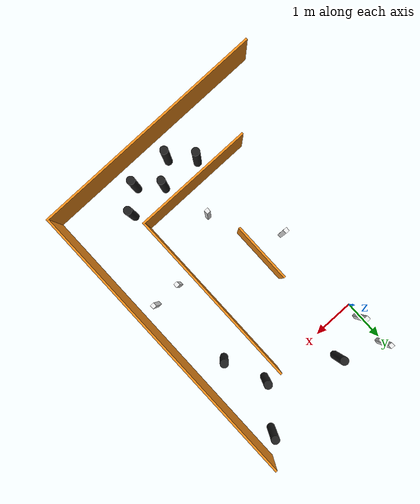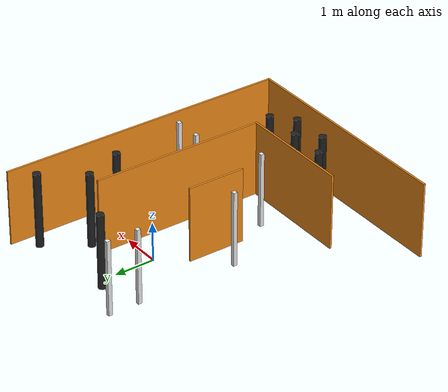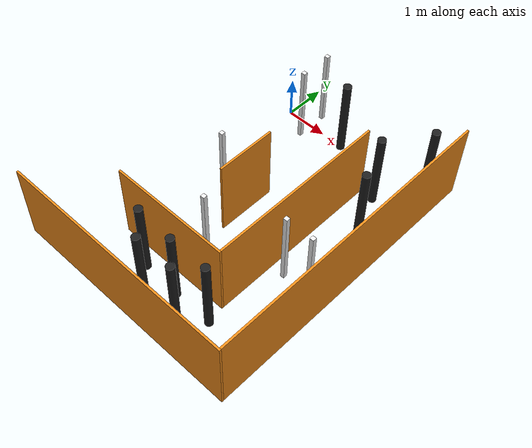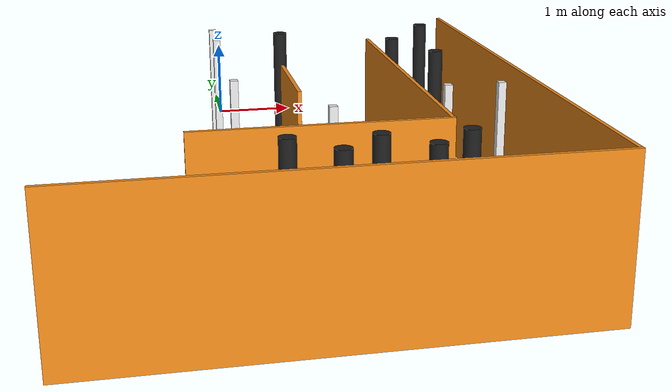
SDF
<sdf version="1.7">
 <model name="pesu_hackathon_arena_1">
  <link name="link_3">
   <pose>2.225 -2.225 0 0 -0 0</pose>
   <visual name="visual">
    <geometry><box><size>0.05 4.5 2</size></box></geometry>
    <material>
     <lighting>1</lighting>
     <script><uri>file://media/materials/scripts/gazebo.material</uri><name>Gazebo/Orange</name></script>
     <shader type="pixel"/>
    </material>
   </visual>
   <collision name="collision">
    <geometry><box><size>0.05 4.5 2</size></box></geometry>
    <surface>
     <friction>
      <ode><mu>1</mu><mu2>1</mu2><fdir1>0 0 0</fdir1><slip1>0</slip1><slip2>0</slip2></ode>
      <torsional>
       <coefficient>1</coefficient>
       <patch_radius>0</patch_radius>
       <surface_radius>0</surface_radius>
       <use_patch_radius>1</use_patch_radius>
       <ode><slip>0</slip></ode>
      </torsional>
     </friction>
     <bounce><restitution_coefficient>0</restitution_coefficient><threshold>1e+06</threshold></bounce>
     <contact>
      <collide_without_contact>0</collide_without_contact>
      <collide_without_contact_bitmask>1</collide_without_contact_bitmask>
      <collide_bitmask>1</collide_bitmask>
      <ode>
       <soft_cfm>0</soft_cfm>
       <soft_erp>0.2</soft_erp>
       <kp>1e+13</kp>
       <kd>1</kd>
       <max_vel>0.01</max_vel>
       <min_depth>0</min_depth>
      </ode>
      <bullet>
       <split_impulse>1</split_impulse>
       <split_impulse_penetration_threshold>-0.01</split_impulse_penetration_threshold>
       <soft_cfm>0</soft_cfm>
       <soft_erp>0.2</soft_erp>
       <kp>1e+13</kp>
       <kd>1</kd>
      </bullet>
     </contact>
    </surface>
   </collision>
  </link>
  <link name="link_5">
   <pose>3.75 -2.225 0 0 -0 0</pose>
   <visual name="visual">
    <geometry><box><size>0.05 7.5 2</size></box></geometry>
    <material>
     <lighting>1</lighting>
     <script><uri>file://media/materials/scripts/gazebo.material</uri><name>Gazebo/Orange</name></script>
     <shader type="pixel"/>
    </material>
   </visual>
   <collision name="collision">
    <geometry><box><size>0.05 7.5 2</size></box></geometry>
    <surface>
     <friction>
      <ode><mu>1</mu><mu2>1</mu2><fdir1>0 0 0</fdir1><slip1>0</slip1><slip2>0</slip2></ode>
      <torsional>
       <coefficient>1</coefficient>
       <patch_radius>0</patch_radius>
       <surface_radius>0</surface_radius>
       <use_patch_radius>1</use_patch_radius>
       <ode><slip>0</slip></ode>
      </torsional>
     </friction>
     <bounce><restitution_coefficient>0</restitution_coefficient><threshold>1e+06</threshold></bounce>
     <contact>
      <collide_without_contact>0</collide_without_contact>
      <collide_without_contact_bitmask>1</collide_without_contact_bitmask>
      <collide_bitmask>1</collide_bitmask>
      <ode>
       <soft_cfm>0</soft_cfm>
       <soft_erp>0.2</soft_erp>
       <kp>1e+13</kp>
       <kd>1</kd>
       <max_vel>0.01</max_vel>
       <min_depth>0</min_depth>
      </ode>
      <bullet>
       <split_impulse>1</split_impulse>
       <split_impulse_penetration_threshold>-0.01</split_impulse_penetration_threshold>
       <soft_cfm>0</soft_cfm>
       <soft_erp>0.2</soft_erp>
       <kp>1e+13</kp>
       <kd>1</kd>
      </bullet>
     </contact>
    </surface>
   </collision>
  </link>
  <link name="link_6">
   <pose>0.765 -6 0 0 -0 0</pose>
   <visual name="visual">
    <geometry><box><size>6.025 0.05 2</size></box></geometry>
    <material>
     <lighting>1</lighting>
     <script><uri>file://media/materials/scripts/gazebo.material</uri><name>Gazebo/Orange</name></script>
     <shader type="pixel"/>
    </material>
   </visual>
   <collision name="collision">
    <geometry><box><size>6.025 0.05 2</size></box></geometry>
    <surface>
     <friction>
      <ode><mu>1</mu><mu2>1</mu2><fdir1>0 0 0</fdir1><slip1>0</slip1><slip2>0</slip2></ode>
      <torsional>
       <coefficient>1</coefficient>
       <patch_radius>0</patch_radius>
       <surface_radius>0</surface_radius>
       <use_patch_radius>1</use_patch_radius>
       <ode><slip>0</slip></ode>
      </torsional>
     </friction>
     <bounce><restitution_coefficient>0</restitution_coefficient><threshold>1e+06</threshold></bounce>
     <contact>
      <collide_without_contact>0</collide_without_contact>
      <collide_without_contact_bitmask>1</collide_without_contact_bitmask>
      <collide_bitmask>1</collide_bitmask>
      <ode>
       <soft_cfm>0</soft_cfm>
       <soft_erp>0.2</soft_erp>
       <kp>1e+13</kp>
       <kd>1</kd>
       <max_vel>0.01</max_vel>
       <min_depth>0</min_depth>
      </ode>
      <bullet>
       <split_impulse>1</split_impulse>
       <split_impulse_penetration_threshold>-0.01</split_impulse_penetration_threshold>
       <soft_cfm>0</soft_cfm>
       <soft_erp>0.2</soft_erp>
       <kp>1e+13</kp>
       <kd>1</kd>
      </bullet>
     </contact>
    </surface>
   </collision>
  </link>
  <link name="link_8">
   <pose>0.75 -4.5 0 0 -0 0</pose>
   <visual name="visual">
    <geometry><box><size>3 0.05 2</size></box></geometry>
    <material>
     <lighting>1</lighting>
     <script><uri>file://media/materials/scripts/gazebo.material</uri><name>Gazebo/Orange</name></script>
     <shader type="pixel"/>
    </material>
   </visual>
   <collision name="collision">
    <geometry><box><size>3 0.05 2</size></box></geometry>
    <surface>
     <friction>
      <ode><mu>1</mu><mu2>1</mu2><fdir1>0 0 0</fdir1><slip1>0</slip1><slip2>0</slip2></ode>
      <torsional>
       <coefficient>1</coefficient>
       <patch_radius>0</patch_radius>
       <surface_radius>0</surface_radius>
       <use_patch_radius>1</use_patch_radius>
       <ode><slip>0</slip></ode>
      </torsional>
     </friction>
     <bounce><restitution_coefficient>0</restitution_coefficient><threshold>1e+06</threshold></bounce>
     <contact>
      <collide_without_contact>0</collide_without_contact>
      <collide_without_contact_bitmask>1</collide_without_contact_bitmask>
      <collide_bitmask>1</collide_bitmask>
      <ode>
       <soft_cfm>0</soft_cfm>
       <soft_erp>0.2</soft_erp>
       <kp>1e+13</kp>
       <kd>1</kd>
       <max_vel>0.01</max_vel>
       <min_depth>0</min_depth>
      </ode>
      <bullet>
       <split_impulse>1</split_impulse>
       <split_impulse_penetration_threshold>-0.01</split_impulse_penetration_threshold>
       <soft_cfm>0</soft_cfm>
       <soft_erp>0.2</soft_erp>
       <kp>1e+13</kp>
       <kd>1</kd>
      </bullet>
     </contact>
    </surface>
   </collision>
  </link>
  <link name="link_9">
   <pose>0.725 -2.25 0 0 -0 0</pose>
   <visual name="visual">
    <geometry><box><size>0.05 1.5 2</size></box></geometry>
    <material>
     <lighting>1</lighting>
     <script><uri>file://media/materials/scripts/gazebo.material</uri><name>Gazebo/Orange</name></script>
     <shader type="pixel"/>
    </material>
   </visual>
   <collision name="collision">
    <geometry><box><size>0.05 1.5 2</size></box></geometry>
    <surface>
     <friction>
      <ode><mu>1</mu><mu2>1</mu2><fdir1>0 0 0</fdir1><slip1>0</slip1><slip2>0</slip2></ode>
      <torsional>
       <coefficient>1</coefficient>
       <patch_radius>0</patch_radius>
       <surface_radius>0</surface_radius>
       <use_patch_radius>1</use_patch_radius>
       <ode><slip>0</slip></ode>
      </torsional>
     </friction>
     <bounce><restitution_coefficient>0</restitution_coefficient><threshold>1e+06</threshold></bounce>
     <contact>
      <collide_without_contact>0</collide_without_contact>
      <collide_without_contact_bitmask>1</collide_without_contact_bitmask>
      <collide_bitmask>1</collide_bitmask>
      <ode>
       <soft_cfm>0</soft_cfm>
       <soft_erp>0.2</soft_erp>
       <kp>1e+13</kp>
       <kd>1</kd>
       <max_vel>0.01</max_vel>
       <min_depth>0</min_depth>
      </ode>
      <bullet>
       <split_impulse>1</split_impulse>
       <split_impulse_penetration_threshold>-0.01</split_impulse_penetration_threshold>
       <soft_cfm>0</soft_cfm>
       <soft_erp>0.2</soft_erp>
       <kp>1e+13</kp>
       <kd>1</kd>
      </bullet>
     </contact>
    </surface>
   </collision>
  </link>
  <link name="obstacle_0">
   <pose>1 -3.75 0 0 -0 0</pose>
   <visual name="visual">
    <geometry><box><size>0.1 0.1 2</size></box></geometry>
    <material>
     <lighting>1</lighting>
     <script><uri>file://media/materials/scripts/gazebo.material</uri><name>Gazebo/White</name></script>
     <shader type="pixel"/>
    </material>
   </visual>
   <collision name="collision">
    <geometry><box><size>0.1 0.1 2</size></box></geometry>
    <surface>
     <friction>
      <ode><mu>1</mu><mu2>1</mu2><fdir1>0 0 0</fdir1><slip1>0</slip1><slip2>0</slip2></ode>
      <torsional>
       <coefficient>1</coefficient>
       <patch_radius>0</patch_radius>
       <surface_radius>0</surface_radius>
       <use_patch_radius>1</use_patch_radius>
       <ode><slip>0</slip></ode>
      </torsional>
     </friction>
     <bounce><restitution_coefficient>0</restitution_coefficient><threshold>1e+06</threshold></bounce>
     <contact>
      <collide_without_contact>0</collide_without_contact>
      <collide_without_contact_bitmask>1</collide_without_contact_bitmask>
      <collide_bitmask>1</collide_bitmask>
      <ode>
       <soft_cfm>0</soft_cfm>
       <soft_erp>0.2</soft_erp>
       <kp>1e+13</kp>
       <kd>1</kd>
       <max_vel>0.01</max_vel>
       <min_depth>0</min_depth>
      </ode>
      <bullet>
       <split_impulse>1</split_impulse>
       <split_impulse_penetration_threshold>-0.01</split_impulse_penetration_threshold>
       <soft_cfm>0</soft_cfm>
       <soft_erp>0.2</soft_erp>
       <kp>1e+13</kp>
       <kd>1</kd>
      </bullet>
     </contact>
    </surface>
   </collision>
  </link>
  <link name="obstacle_1">
   <pose>0 -2.25 0 0 -0 0</pose>
   <visual name="visual">
    <geometry><box><size>0.1 0.1 2</size></box></geometry>
    <material>
     <lighting>1</lighting>
     <script><uri>file://media/materials/scripts/gazebo.material</uri><name>Gazebo/White</name></script>
     <shader type="pixel"/>
    </material>
   </visual>
   <collision name="collision">
    <geometry><box><size>0.1 0.1 2</size></box></geometry>
    <surface>
     <friction>
      <ode><mu>1</mu><mu2>1</mu2><fdir1>0 0 0</fdir1><slip1>0</slip1><slip2>0</slip2></ode>
      <torsional>
       <coefficient>1</coefficient>
       <patch_radius>0</patch_radius>
       <surface_radius>0</surface_radius>
       <use_patch_radius>1</use_patch_radius>
       <ode><slip>0</slip></ode>
      </torsional>
     </friction>
     <bounce><restitution_coefficient>0</restitution_coefficient><threshold>1e+06</threshold></bounce>
     <contact>
      <collide_without_contact>0</collide_without_contact>
      <collide_without_contact_bitmask>1</collide_without_contact_bitmask>
      <collide_bitmask>1</collide_bitmask>
      <ode>
       <soft_cfm>0</soft_cfm>
       <soft_erp>0.2</soft_erp>
       <kp>1e+13</kp>
       <kd>1</kd>
       <max_vel>0.01</max_vel>
       <min_depth>0</min_depth>
      </ode>
      <bullet>
       <split_impulse>1</split_impulse>
       <split_impulse_penetration_threshold>-0.01</split_impulse_penetration_threshold>
       <soft_cfm>0</soft_cfm>
       <soft_erp>0.2</soft_erp>
       <kp>1e+13</kp>
       <kd>1</kd>
      </bullet>
     </contact>
    </surface>
   </collision>
  </link>
  <link name="obstacle_7">
   <pose>0.3 -4.9 0 0 -0 0</pose>
   <visual name="visual">
    <geometry><cylinder><radius>0.1</radius><length>2</length></cylinder></geometry>
    <material>
     <lighting>1</lighting>
     <script><uri>file://media/materials/scripts/gazebo.material</uri><name>Gazebo/Black</name></script>
     <shader type="pixel"/>
    </material>
   </visual>
   <collision name="collision">
    <geometry><cylinder><radius>0.1</radius><length>2</length></cylinder></geometry>
    <surface>
     <friction>
      <ode><mu>1</mu><mu2>1</mu2><fdir1>0 0 0</fdir1><slip1>0</slip1><slip2>0</slip2></ode>
      <torsional>
       <coefficient>1</coefficient>
       <patch_radius>0</patch_radius>
       <surface_radius>0</surface_radius>
       <use_patch_radius>1</use_patch_radius>
       <ode><slip>0</slip></ode>
      </torsional>
     </friction>
     <bounce><restitution_coefficient>0</restitution_coefficient><threshold>1e+06</threshold></bounce>
     <contact>
      <collide_without_contact>0</collide_without_contact>
      <collide_without_contact_bitmask>1</collide_without_contact_bitmask>
      <collide_bitmask>1</collide_bitmask>
      <ode>
       <soft_cfm>0</soft_cfm>
       <soft_erp>0.2</soft_erp>
       <kp>1e+13</kp>
       <kd>1</kd>
       <max_vel>0.01</max_vel>
       <min_depth>0</min_depth>
      </ode>
      <bullet>
       <split_impulse>1</split_impulse>
       <split_impulse_penetration_threshold>-0.01</split_impulse_penetration_threshold>
       <soft_cfm>0</soft_cfm>
       <soft_erp>0.2</soft_erp>
       <kp>1e+13</kp>
       <kd>1</kd>
      </bullet>
     </contact>
    </surface>
   </collision>
  </link>
  <link name="obstacle_8">
   <pose>0.8 -5.4 0 0 -0 0</pose>
   <visual name="visual">
    <geometry><cylinder><radius>0.1</radius><length>2</length></cylinder></geometry>
    <material>
     <lighting>1</lighting>
     <script><uri>file://media/materials/scripts/gazebo.material</uri><name>Gazebo/Black</name></script>
     <shader type="pixel"/>
    </material>
   </visual>
   <collision name="collision">
    <geometry><cylinder><radius>0.1</radius><length>2</length></cylinder></geometry>
    <surface>
     <friction>
      <ode><mu>1</mu><mu2>1</mu2><fdir1>0 0 0</fdir1><slip1>0</slip1><slip2>0</slip2></ode>
      <torsional>
       <coefficient>1</coefficient>
       <patch_radius>0</patch_radius>
       <surface_radius>0</surface_radius>
       <use_patch_radius>1</use_patch_radius>
       <ode><slip>0</slip></ode>
      </torsional>
     </friction>
     <bounce><restitution_coefficient>0</restitution_coefficient><threshold>1e+06</threshold></bounce>
     <contact>
      <collide_without_contact>0</collide_without_contact>
      <collide_without_contact_bitmask>1</collide_without_contact_bitmask>
      <collide_bitmask>1</collide_bitmask>
      <ode>
       <soft_cfm>0</soft_cfm>
       <soft_erp>0.2</soft_erp>
       <kp>1e+13</kp>
       <kd>1</kd>
       <max_vel>0.01</max_vel>
       <min_depth>0</min_depth>
      </ode>
      <bullet>
       <split_impulse>1</split_impulse>
       <split_impulse_penetration_threshold>-0.01</split_impulse_penetration_threshold>
       <soft_cfm>0</soft_cfm>
       <soft_erp>0.2</soft_erp>
       <kp>1e+13</kp>
       <kd>1</kd>
      </bullet>
     </contact>
    </surface>
   </collision>
  </link>
  <link name="obstacle_9">
   <pose>1.3 -4.95 0 0 -0 0</pose>
   <visual name="visual">
    <geometry><cylinder><radius>0.1</radius><length>2</length></cylinder></geometry>
    <material>
     <lighting>1</lighting>
     <script><uri>file://media/materials/scripts/gazebo.material</uri><name>Gazebo/Black</name></script>
     <shader type="pixel"/>
    </material>
   </visual>
   <collision name="collision">
    <geometry><cylinder><radius>0.1</radius><length>2</length></cylinder></geometry>
    <surface>
     <friction>
      <ode><mu>1</mu><mu2>1</mu2><fdir1>0 0 0</fdir1><slip1>0</slip1><slip2>0</slip2></ode>
      <torsional>
       <coefficient>1</coefficient>
       <patch_radius>0</patch_radius>
       <surface_radius>0</surface_radius>
       <use_patch_radius>1</use_patch_radius>
       <ode><slip>0</slip></ode>
      </torsional>
     </friction>
     <bounce><restitution_coefficient>0</restitution_coefficient><threshold>1e+06</threshold></bounce>
     <contact>
      <collide_without_contact>0</collide_without_contact>
      <collide_without_contact_bitmask>1</collide_without_contact_bitmask>
      <collide_bitmask>1</collide_bitmask>
      <ode>
       <soft_cfm>0</soft_cfm>
       <soft_erp>0.2</soft_erp>
       <kp>1e+13</kp>
       <kd>1</kd>
       <max_vel>0.01</max_vel>
       <min_depth>0</min_depth>
      </ode>
      <bullet>
       <split_impulse>1</split_impulse>
       <split_impulse_penetration_threshold>-0.01</split_impulse_penetration_threshold>
       <soft_cfm>0</soft_cfm>
       <soft_erp>0.2</soft_erp>
       <kp>1e+13</kp>
       <kd>1</kd>
      </bullet>
     </contact>
    </surface>
   </collision>
  </link>
  <link name="obstacle_10">
   <pose>1.8 -5.4 0 0 -0 0</pose>
   <visual name="visual">
    <geometry><cylinder><radius>0.1</radius><length>2</length></cylinder></geometry>
    <material>
     <lighting>1</lighting>
     <script><uri>file://media/materials/scripts/gazebo.material</uri><name>Gazebo/Black</name></script>
     <shader type="pixel"/>
    </material>
   </visual>
   <collision name="collision">
    <geometry><cylinder><radius>0.1</radius><length>2</length></cylinder></geometry>
    <surface>
     <friction>
      <ode><mu>1</mu><mu2>1</mu2><fdir1>0 0 0</fdir1><slip1>0</slip1><slip2>0</slip2></ode>
      <torsional>
       <coefficient>1</coefficient>
       <patch_radius>0</patch_radius>
       <surface_radius>0</surface_radius>
       <use_patch_radius>1</use_patch_radius>
       <ode><slip>0</slip></ode>
      </torsional>
     </friction>
     <bounce><restitution_coefficient>0</restitution_coefficient><threshold>1e+06</threshold></bounce>
     <contact>
      <collide_without_contact>0</collide_without_contact>
      <collide_without_contact_bitmask>1</collide_without_contact_bitmask>
      <collide_bitmask>1</collide_bitmask>
      <ode>
       <soft_cfm>0</soft_cfm>
       <soft_erp>0.2</soft_erp>
       <kp>1e+13</kp>
       <kd>1</kd>
       <max_vel>0.01</max_vel>
       <min_depth>0</min_depth>
      </ode>
      <bullet>
       <split_impulse>1</split_impulse>
       <split_impulse_penetration_threshold>-0.01</split_impulse_penetration_threshold>
       <soft_cfm>0</soft_cfm>
       <soft_erp>0.2</soft_erp>
       <kp>1e+13</kp>
       <kd>1</kd>
      </bullet>
     </contact>
    </surface>
   </collision>
  </link>
  <link name="obstacle_11">
   <pose>2.3 -4.95 0 0 -0 0</pose>
   <visual name="visual">
    <geometry><cylinder><radius>0.1</radius><length>2</length></cylinder></geometry>
    <material>
     <lighting>1</lighting>
     <script><uri>file://media/materials/scripts/gazebo.material</uri><name>Gazebo/Black</name></script>
     <shader type="pixel"/>
    </material>
   </visual>
   <collision name="collision">
    <geometry><cylinder><radius>0.1</radius><length>2</length></cylinder></geometry>
    <surface>
     <friction>
      <ode><mu>1</mu><mu2>1</mu2><fdir1>0 0 0</fdir1><slip1>0</slip1><slip2>0</slip2></ode>
      <torsional>
       <coefficient>1</coefficient>
       <patch_radius>0</patch_radius>
       <surface_radius>0</surface_radius>
       <use_patch_radius>1</use_patch_radius>
       <ode><slip>0</slip></ode>
      </torsional>
     </friction>
     <bounce><restitution_coefficient>0</restitution_coefficient><threshold>1e+06</threshold></bounce>
     <contact>
      <collide_without_contact>0</collide_without_contact>
      <collide_without_contact_bitmask>1</collide_without_contact_bitmask>
      <collide_bitmask>1</collide_bitmask>
      <ode>
       <soft_cfm>0</soft_cfm>
       <soft_erp>0.2</soft_erp>
       <kp>1e+13</kp>
       <kd>1</kd>
       <max_vel>0.01</max_vel>
       <min_depth>0</min_depth>
      </ode>
      <bullet>
       <split_impulse>1</split_impulse>
       <split_impulse_penetration_threshold>-0.01</split_impulse_penetration_threshold>
       <soft_cfm>0</soft_cfm>
       <soft_erp>0.2</soft_erp>
       <kp>1e+13</kp>
       <kd>1</kd>
      </bullet>
     </contact>
    </surface>
   </collision>
  </link>
  <link name="obstacle_12">
   <pose>3.3 -3 0 0 -0 0</pose>
   <visual name="visual">
    <geometry><box><size>0.1 0.1 2</size></box></geometry>
    <material>
     <lighting>1</lighting>
     <script><uri>file://media/materials/scripts/gazebo.material</uri><name>Gazebo/White</name></script>
     <shader type="pixel"/>
    </material>
   </visual>
   <collision name="collision">
    <geometry><box><size>0.1 0.1 2</size></box></geometry>
    <surface>
     <friction>
      <ode><mu>1</mu><mu2>1</mu2><fdir1>0 0 0</fdir1><slip1>0</slip1><slip2>0</slip2></ode>
      <torsional>
       <coefficient>1</coefficient>
       <patch_radius>0</patch_radius>
       <surface_radius>0</surface_radius>
       <use_patch_radius>1</use_patch_radius>
       <ode><slip>0</slip></ode>
      </torsional>
     </friction>
     <bounce><restitution_coefficient>0</restitution_coefficient><threshold>1e+06</threshold></bounce>
     <contact>
      <collide_without_contact>0</collide_without_contact>
      <collide_without_contact_bitmask>1</collide_without_contact_bitmask>
      <collide_bitmask>1</collide_bitmask>
      <ode>
       <soft_cfm>0</soft_cfm>
       <soft_erp>0.2</soft_erp>
       <kp>1e+13</kp>
       <kd>1</kd>
       <max_vel>0.01</max_vel>
       <min_depth>0</min_depth>
      </ode>
      <bullet>
       <split_impulse>1</split_impulse>
       <split_impulse_penetration_threshold>-0.01</split_impulse_penetration_threshold>
       <soft_cfm>0</soft_cfm>
       <soft_erp>0.2</soft_erp>
       <kp>1e+13</kp>
       <kd>1</kd>
      </bullet>
     </contact>
    </surface>
   </collision>
  </link>
  <link name="obstacle_13">
   <pose>2.6 -3 0 0 -0 0</pose>
   <visual name="visual">
    <geometry><box><size>0.1 0.1 2</size></box></geometry>
    <material>
     <lighting>1</lighting>
     <script><uri>file://media/materials/scripts/gazebo.material</uri><name>Gazebo/White</name></script>
     <shader type="pixel"/>
    </material>
   </visual>
   <collision name="collision">
    <geometry><box><size>0.1 0.1 2</size></box></geometry>
    <surface>
     <friction>
      <ode><mu>1</mu><mu2>1</mu2><fdir1>0 0 0</fdir1><slip1>0</slip1><slip2>0</slip2></ode>
      <torsional>
       <coefficient>1</coefficient>
       <patch_radius>0</patch_radius>
       <surface_radius>0</surface_radius>
       <use_patch_radius>1</use_patch_radius>
       <ode><slip>0</slip></ode>
      </torsional>
     </friction>
     <bounce><restitution_coefficient>0</restitution_coefficient><threshold>1e+06</threshold></bounce>
     <contact>
      <collide_without_contact>0</collide_without_contact>
      <collide_without_contact_bitmask>1</collide_without_contact_bitmask>
      <collide_bitmask>1</collide_bitmask>
      <ode>
       <soft_cfm>0</soft_cfm>
       <soft_erp>0.2</soft_erp>
       <kp>1e+13</kp>
       <kd>1</kd>
       <max_vel>0.01</max_vel>
       <min_depth>0</min_depth>
      </ode>
      <bullet>
       <split_impulse>1</split_impulse>
       <split_impulse_penetration_threshold>-0.01</split_impulse_penetration_threshold>
       <soft_cfm>0</soft_cfm>
       <soft_erp>0.2</soft_erp>
       <kp>1e+13</kp>
       <kd>1</kd>
      </bullet>
     </contact>
    </surface>
   </collision>
  </link>
  <link name="obstacle_14">
   <pose>3 -1 0 0 -0 0</pose>
   <visual name="visual">
    <geometry><cylinder><radius>0.1</radius><length>2</length></cylinder></geometry>
    <material>
     <lighting>1</lighting>
     <script><uri>file://media/materials/scripts/gazebo.material</uri><name>Gazebo/Black</name></script>
     <shader type="pixel"/>
    </material>
   </visual>
   <collision name="collision">
    <geometry><cylinder><radius>0.1</radius><length>2</length></cylinder></geometry>
    <surface>
     <friction>
      <ode><mu>1</mu><mu2>1</mu2><fdir1>0 0 0</fdir1><slip1>0</slip1><slip2>0</slip2></ode>
      <torsional>
       <coefficient>1</coefficient>
       <patch_radius>0</patch_radius>
       <surface_radius>0</surface_radius>
       <use_patch_radius>1</use_patch_radius>
       <ode><slip>0</slip></ode>
      </torsional>
     </friction>
     <bounce><restitution_coefficient>0</restitution_coefficient><threshold>1e+06</threshold></bounce>
     <contact>
      <collide_without_contact>0</collide_without_contact>
      <collide_without_contact_bitmask>1</collide_without_contact_bitmask>
      <collide_bitmask>1</collide_bitmask>
      <ode>
       <soft_cfm>0</soft_cfm>
       <soft_erp>0.2</soft_erp>
       <kp>1e+13</kp>
       <kd>1</kd>
       <max_vel>0.01</max_vel>
       <min_depth>0</min_depth>
      </ode>
      <bullet>
       <split_impulse>1</split_impulse>
       <split_impulse_penetration_threshold>-0.01</split_impulse_penetration_threshold>
       <soft_cfm>0</soft_cfm>
       <soft_erp>0.2</soft_erp>
       <kp>1e+13</kp>
       <kd>1</kd>
      </bullet>
     </contact>
    </surface>
   </collision>
  </link>
  <link name="obstacle_15">
   <pose>2.6 0 0 0 -0 0</pose>
   <visual name="visual">
    <geometry><cylinder><radius>0.1</radius><length>2</length></cylinder></geometry>
    <material>
     <lighting>1</lighting>
     <script><uri>file://media/materials/scripts/gazebo.material</uri><name>Gazebo/Black</name></script>
     <shader type="pixel"/>
    </material>
   </visual>
   <collision name="collision">
    <geometry><cylinder><radius>0.1</radius><length>2</length></cylinder></geometry>
    <surface>
     <friction>
      <ode><mu>1</mu><mu2>1</mu2><fdir1>0 0 0</fdir1><slip1>0</slip1><slip2>0</slip2></ode>
      <torsional>
       <coefficient>1</coefficient>
       <patch_radius>0</patch_radius>
       <surface_radius>0</surface_radius>
       <use_patch_radius>1</use_patch_radius>
       <ode><slip>0</slip></ode>
      </torsional>
     </friction>
     <bounce><restitution_coefficient>0</restitution_coefficient><threshold>1e+06</threshold></bounce>
     <contact>
      <collide_without_contact>0</collide_without_contact>
      <collide_without_contact_bitmask>1</collide_without_contact_bitmask>
      <collide_bitmask>1</collide_bitmask>
      <ode>
       <soft_cfm>0</soft_cfm>
       <soft_erp>0.2</soft_erp>
       <kp>1e+13</kp>
       <kd>1</kd>
       <max_vel>0.01</max_vel>
       <min_depth>0</min_depth>
      </ode>
      <bullet>
       <split_impulse>1</split_impulse>
       <split_impulse_penetration_threshold>-0.01</split_impulse_penetration_threshold>
       <soft_cfm>0</soft_cfm>
       <soft_erp>0.2</soft_erp>
       <kp>1e+13</kp>
       <kd>1</kd>
      </bullet>
     </contact>
    </surface>
   </collision>
  </link>
  <link name="obstacle_16">
   <pose>3.3 1 0 0 -0 0</pose>
   <visual name="visual">
    <geometry><cylinder><radius>0.1</radius><length>2</length></cylinder></geometry>
    <material>
     <lighting>1</lighting>
     <script><uri>file://media/materials/scripts/gazebo.material</uri><name>Gazebo/Black</name></script>
     <shader type="pixel"/>
    </material>
   </visual>
   <collision name="collision">
    <geometry><cylinder><radius>0.1</radius><length>2</length></cylinder></geometry>
    <surface>
     <friction>
      <ode><mu>1</mu><mu2>1</mu2><fdir1>0 0 0</fdir1><slip1>0</slip1><slip2>0</slip2></ode>
      <torsional>
       <coefficient>1</coefficient>
       <patch_radius>0</patch_radius>
       <surface_radius>0</surface_radius>
       <use_patch_radius>1</use_patch_radius>
       <ode><slip>0</slip></ode>
      </torsional>
     </friction>
     <bounce><restitution_coefficient>0</restitution_coefficient><threshold>1e+06</threshold></bounce>
     <contact>
      <collide_without_contact>0</collide_without_contact>
      <collide_without_contact_bitmask>1</collide_without_contact_bitmask>
      <collide_bitmask>1</collide_bitmask>
      <ode>
       <soft_cfm>0</soft_cfm>
       <soft_erp>0.2</soft_erp>
       <kp>1e+13</kp>
       <kd>1</kd>
       <max_vel>0.01</max_vel>
       <min_depth>0</min_depth>
      </ode>
      <bullet>
       <split_impulse>1</split_impulse>
       <split_impulse_penetration_threshold>-0.01</split_impulse_penetration_threshold>
       <soft_cfm>0</soft_cfm>
       <soft_erp>0.2</soft_erp>
       <kp>1e+13</kp>
       <kd>1</kd>
      </bullet>
     </contact>
    </surface>
   </collision>
  </link>
  <link name="obstacle_17">
   <pose>1 0.75 0 0 -0 0</pose>
   <visual name="visual">
    <geometry><cylinder><radius>0.1</radius><length>2</length></cylinder></geometry>
    <material>
     <lighting>1</lighting>
     <script><uri>file://media/materials/scripts/gazebo.material</uri><name>Gazebo/Black</name></script>
     <shader type="pixel"/>
    </material>
   </visual>
   <collision name="collision">
    <geometry><cylinder><radius>0.1</radius><length>2</length></cylinder></geometry>
    <surface>
     <friction>
      <ode><mu>1</mu><mu2>1</mu2><fdir1>0 0 0</fdir1><slip1>0</slip1><slip2>0</slip2></ode>
      <torsional>
       <coefficient>1</coefficient>
       <patch_radius>0</patch_radius>
       <surface_radius>0</surface_radius>
       <use_patch_radius>1</use_patch_radius>
       <ode><slip>0</slip></ode>
      </torsional>
     </friction>
     <bounce><restitution_coefficient>0</restitution_coefficient><threshold>1e+06</threshold></bounce>
     <contact>
      <collide_without_contact>0</collide_without_contact>
      <collide_without_contact_bitmask>1</collide_without_contact_bitmask>
      <collide_bitmask>1</collide_bitmask>
      <ode>
       <soft_cfm>0</soft_cfm>
       <soft_erp>0.2</soft_erp>
       <kp>1e+13</kp>
       <kd>1</kd>
       <max_vel>0.01</max_vel>
       <min_depth>0</min_depth>
      </ode>
      <bullet>
       <split_impulse>1</split_impulse>
       <split_impulse_penetration_threshold>-0.01</split_impulse_penetration_threshold>
       <soft_cfm>0</soft_cfm>
       <soft_erp>0.2</soft_erp>
       <kp>1e+13</kp>
       <kd>1</kd>
      </bullet>
     </contact>
    </surface>
   </collision>
  </link>
  <link name="obstacle_18">
   <pose>0 0.4 0 0 -0 0</pose>
   <visual name="visual">
    <geometry><box><size>0.1 0.1 2</size></box></geometry>
    <material>
     <lighting>1</lighting>
     <script><uri>file://media/materials/scripts/gazebo.material</uri><name>Gazebo/White</name></script>
     <shader type="pixel"/>
    </material>
   </visual>
   <collision name="collision">
    <geometry><box><size>0.1 0.1 2</size></box></geometry>
    <surface>
     <friction>
      <ode><mu>1</mu><mu2>1</mu2><fdir1>0 0 0</fdir1><slip1>0</slip1><slip2>0</slip2></ode>
      <torsional>
       <coefficient>1</coefficient>
       <patch_radius>0</patch_radius>
       <surface_radius>0</surface_radius>
       <use_patch_radius>1</use_patch_radius>
       <ode><slip>0</slip></ode>
      </torsional>
     </friction>
     <bounce><restitution_coefficient>0</restitution_coefficient><threshold>1e+06</threshold></bounce>
     <contact>
      <collide_without_contact>0</collide_without_contact>
      <collide_without_contact_bitmask>1</collide_without_contact_bitmask>
      <collide_bitmask>1</collide_bitmask>
      <ode>
       <soft_cfm>0</soft_cfm>
       <soft_erp>0.2</soft_erp>
       <kp>1e+13</kp>
       <kd>1</kd>
       <max_vel>0.01</max_vel>
       <min_depth>0</min_depth>
      </ode>
      <bullet>
       <split_impulse>1</split_impulse>
       <split_impulse_penetration_threshold>-0.01</split_impulse_penetration_threshold>
       <soft_cfm>0</soft_cfm>
       <soft_erp>0.2</soft_erp>
       <kp>1e+13</kp>
       <kd>1</kd>
      </bullet>
     </contact>
    </surface>
   </collision>
  </link>
  <link name="obstacle_19">
   <pose>0 1.2 0 0 -0 0</pose>
   <visual name="visual">
    <geometry><box><size>0.1 0.1 2</size></box></geometry>
    <material>
     <lighting>1</lighting>
     <script><uri>file://media/materials/scripts/gazebo.material</uri><name>Gazebo/White</name></script>
     <shader type="pixel"/>
    </material>
   </visual>
   <collision name="collision">
    <geometry><box><size>0.1 0.1 2</size></box></geometry>
    <surface>
     <friction>
      <ode><mu>1</mu><mu2>1</mu2><fdir1>0 0 0</fdir1><slip1>0</slip1><slip2>0</slip2></ode>
      <torsional>
       <coefficient>1</coefficient>
       <patch_radius>0</patch_radius>
       <surface_radius>0</surface_radius>
       <use_patch_radius>1</use_patch_radius>
       <ode><slip>0</slip></ode>
      </torsional>
     </friction>
     <bounce><restitution_coefficient>0</restitution_coefficient><threshold>1e+06</threshold></bounce>
     <contact>
      <collide_without_contact>0</collide_without_contact>
      <collide_without_contact_bitmask>1</collide_without_contact_bitmask>
      <collide_bitmask>1</collide_bitmask>
      <ode>
       <soft_cfm>0</soft_cfm>
       <soft_erp>0.2</soft_erp>
       <kp>1e+13</kp>
       <kd>1</kd>
       <max_vel>0.01</max_vel>
       <min_depth>0</min_depth>
      </ode>
      <bullet>
       <split_impulse>1</split_impulse>
       <split_impulse_penetration_threshold>-0.01</split_impulse_penetration_threshold>
       <soft_cfm>0</soft_cfm>
       <soft_erp>0.2</soft_erp>
       <kp>1e+13</kp>
       <kd>1</kd>
      </bullet>
     </contact>
    </surface>
   </collision>
  </link>
  <static>1</static>
 </model>
</sdf>
